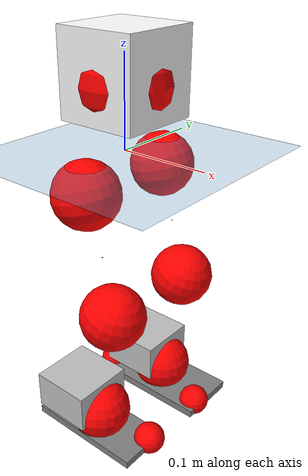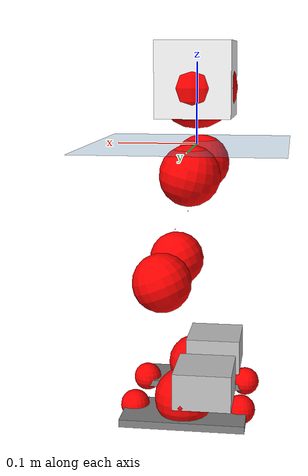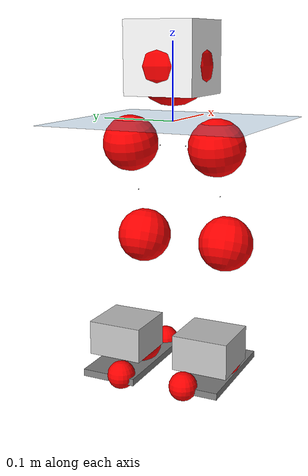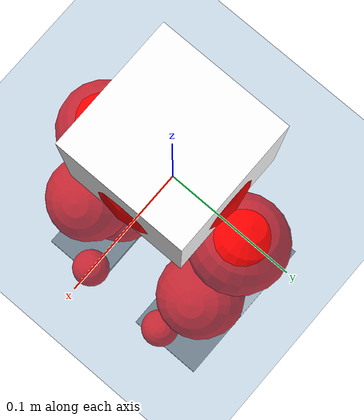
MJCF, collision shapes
<mujoco model="pi_12dof_release_v1">
  <compiler angle="radian" assetdir="assets" balanceinertia="true" inertiafromgeom="false"/>

  <option timestep="0.005" density="1.2" viscosity="2e-05"/>

  <size nkey="1"/>

  <visual>
    <quality shadowsize="8192"/>
    <map shadowclip="0.5"/>
  </visual>

  <default>
    <default class="/">
      <joint armature="0.01" damping="0.01" frictionloss="0.01"/>
      <geom contype="0" conaffinity="0" group="1" solref="-1000 -80"/>
      <site size="0.01 0.005 0.005" group="5"/>
      <general forcelimited="true" biastype="affine" gainprm="20" biasprm="0 -20 -0.5"/>
      <default class="foot">
        <geom size="0.0845 0.036 0.005" type="box" condim="6" group="4" priority="1" friction="0.9 0.2 0.2" solimp="0.015 1 0.005"/>
      </default>
      <default class="reward_collision_sphere">
        <geom group="5" rgba="1 0 0 1"/>
      </default>
    </default>
  </default>

  <asset>
    <texture type="skybox" colorspace="auto" name="//unnamed_texture_0" builtin="gradient" rgb1="0.95 0.95 0.95" rgb2="0.95 0.95 0.95" width="100" height="600"/>
    <texture type="2d" colorspace="auto" name="texplane" builtin="checker" rgb1="0.345 0.575 0.748" rgb2="0.345 0.575 0.748" markrgb="1 1 1" width="512" height="512"/>
    <material name="MatPlane" class="/" texture="texplane" texuniform="true" texrepeat="2 2" specular="0.9"/>
    <mesh name="baselink_1" class="/" file="baselink_1.STL"/>
    <mesh name="r_hip_pitch_link" class="/" file="r_hip_pitch_link.STL"/>
    <mesh name="r_hip_roll_link" class="/" file="r_hip_roll_link.STL"/>
    <mesh name="r_thigh_link" class="/" file="r_thigh_link.STL"/>
    <mesh name="r_calf_link" class="/" file="r_calf_link.STL"/>
    <mesh name="r_ankle_pitch_link" class="/" file="r_ankle_pitch_link.STL"/>
    <mesh name="r_ankle_roll_link" class="/" file="r_ankle_roll_link.STL"/>
    <mesh name="l_hip_pitch_link" class="/" file="l_hip_pitch_link.STL"/>
    <mesh name="l_hip_roll_link" class="/" file="l_hip_roll_link.STL"/>
    <mesh name="l_thigh_link" class="/" file="l_thigh_link.STL"/>
    <mesh name="l_calf_link" class="/" file="l_calf_link.STL"/>
    <mesh name="l_ankle_pitch_link" class="/" file="l_ankle_pitch_link.STL"/>
    <mesh name="l_ankle_roll_link" class="/" file="l_ankle_roll_link.STL"/>
  </asset>

  <worldbody>
    <geom name="floor" class="/" size="100 100 0.125" type="plane" group="0" material="MatPlane"/>
    <light name="toplight_shadow" class="/" pos="0 0 5" dir="0.0990148 0.0990148 -0.990148" type="directional" ambient="0.04 0.04 0.04" diffuse="0.55 0.55 0.55" specular="0.12 0.12 0.12"/>
    <light name="toplight_fill" class="/" pos="0 0 5" dir="0.0990148 0.0990148 -0.990148" type="directional" castshadow="false" ambient="0.04 0.04 0.04" diffuse="0.3 0.3 0.3" specular="0.08 0.08 0.08"/>
    <body name="trunk" pos="0.000619735 0.000415196 0.000901463" quat="1 -0.000277075 0.000150409 0.000284875">
      <inertial pos="0.00323957 -0.00140022 0.0396549" quat="0.695045 0.00948911 0.00882349 0.718849" mass="1.6883" diaginertia="0.0101133 0.00253374 0.00392527"/>
      <joint name="//unnamed_joint_0" type="free"/>
      <geom name="//unnamed_geom_1" class="/" type="mesh" density="0" rgba="1 1 1 1" mesh="baselink_1"/>
      <geom name="//unnamed_geom_2" class="/" size="0.0460602 0.0460602 0.0460602" pos="0 0 0.0787514" type="box" rgba="1 1 1 1"/>
      <geom name="//unnamed_geom_3" class="reward_collision_sphere" size="0.0506662" pos="0 0 0.0689075"/>
      <site name="imu" class="/" pos="-0.0046544 -0.00660674 0.00194335" size="0.00921204"/>
      <camera name="track" class="/" pos="0 -1.55206 0" quat="0.707107 0.707107 0 0" mode="trackcom"/>
      <camera name="ego_camera" class="/" pos="0.0752394 0 0.177191" quat="-0.5 -0.5 0.5 0.5"/>
      <body name="r_hip_pitch_link" pos="-4.72068e-05 -0.017534 -0.0320306" quat="0.992166 -0.00041456 -0.124929 -0.000152382">
        <inertial pos="0.00200193 -0.0434071 -0.000198443" quat="-0.0178687 0.704734 -0.0265818 0.708749" mass="0.291899" diaginertia="0.000111315 2.78139e-05 7.65501e-05"/>
        <joint name="r_hip_pitch_joint" class="/" pos="0 0 0" axis="0.0019025 -0.999997 -0.00140343" range="-1.75137 1.25086" armature="0.00963168" damping="0.0162301" frictionloss="0.00925898"/>
        <geom name="//unnamed_geom_4" class="/" type="mesh" density="0" rgba="0.75294 0.75294 0.75294 1" mesh="r_hip_pitch_link"/>
        <geom name="//unnamed_geom_5" class="/" size="0.000460602 0.000460602 0.000460602" type="box" rgba="0.75294 0.75294 0.75294 1"/>
        <body name="r_hip_roll_link" pos="0.000383122 -0.0429987 0.000198345" quat="1 -4.32551e-05 1.72308e-05 4.55627e-05">
          <inertial pos="-0.00138526 -0.000913766 -0.0619576" quat="0.7058 -0.0792965 -0.0826474 0.699091" mass="0.300612" diaginertia="0.000340376 7.88814e-05 0.000119003"/>
          <joint name="r_hip_roll_joint" class="/" pos="0 0 0" axis="-0.999996 -0.00011711 -0.00265908" range="-0.115703 0.50713" armature="0.00906045" damping="0.00600897" frictionloss="0.00929658"/>
          <geom name="//unnamed_geom_6" class="/" type="mesh" density="0" rgba="0.75294 0.75294 0.75294 1" mesh="r_hip_roll_link"/>
          <geom name="//unnamed_geom_7" class="/" size="0.000460602 0.000460602 0.000460602" type="box" rgba="0.75294 0.75294 0.75294 1"/>
          <geom name="//unnamed_geom_8" class="reward_collision_sphere" size="0.0368482"/>
          <body name="r_thigh_link" pos="0.00122497 0.00184667 -0.0683841" quat="1 1.53899e-05 -8.74182e-05 -1.49157e-05">
            <inertial pos="0.000125105 0.0017363 -0.0476843" quat="0.736988 0.675906 -0.000409745 -0.000255164" mass="0.0887696" diaginertia="0.000125898 2.65203e-05 5.34907e-05"/>
            <joint name="r_thigh_joint" class="/" pos="0 0 0" axis="-0.0012136 0.00185239 -0.999998" range="-0.300823 0.585936" armature="0.00945595" damping="0.00373325" frictionloss="0.00859101"/>
            <geom name="//unnamed_geom_9" class="/" type="mesh" density="0" rgba="0.75294 0.75294 0.75294 1" mesh="r_thigh_link"/>
            <geom name="//unnamed_geom_10" class="/" size="0.000460602 0.000460602 0.000460602" type="box" rgba="0.75294 0.75294 0.75294 1"/>
            <body name="r_calf_link" pos="-0.0014001 -0.00261886 -0.0683912" quat="0.94765 -9.93098e-06 0.319312 2.57486e-05">
              <inertial pos="-0.000205226 0.000214216 -0.068599" quat="0.999982 -0.0036921 -0.00282395 0.00384267" mass="0.643796" diaginertia="0.0036555 0.00098677 0.000164017"/>
              <joint name="r_calf_joint" class="/" pos="0 0 0" axis="0.000793953 -1 0.000208359" range="-1.64029 0.647098" armature="0.00938235" damping="0.00981489" frictionloss="0.00924228"/>
              <geom name="//unnamed_geom_11" class="/" type="mesh" density="0" rgba="0.75294 0.75294 0.75294 1" mesh="r_calf_link"/>
              <geom name="//unnamed_geom_12" class="/" size="0.000460602 0.000460602 0.000460602" type="box" rgba="0.75294 0.75294 0.75294 1"/>
              <geom name="//unnamed_geom_13" class="reward_collision_sphere" size="0.0368482"/>
              <body name="r_ankle_pitch_link" pos="1.06695e-05 -9.55434e-05 -0.137513" quat="0.980054 2.82765e-05 -0.198733 9.53765e-06">
                <inertial pos="0.00461382 0.0028599 -0.00116972" quat="-0.00243435 0.706897 -0.00750638 0.707273" mass="0.138699" diaginertia="0.000319203 6.29699e-05 0.000111722"/>
                <joint name="r_ankle_pitch_joint" class="/" pos="0 0 0" axis="0.00204966 -0.999994 -0.00267146" range="-1.30108 0.523852" armature="0.00920601" damping="0.00778955" frictionloss="0.00930521"/>
                <geom name="//unnamed_geom_14" class="/" type="mesh" density="0" rgba="0.75294 0.75294 0.75294 1" mesh="r_ankle_pitch_link"/>
                <geom name="//unnamed_geom_15" class="/" size="0.035927 0.0368482 0.0230301" type="box" rgba="0.75294 0.75294 0.75294 1"/>
                <body name="r_ankle_roll_link" pos="0.0768062 0.00278375 0.00032149" quat="1 -3.11995e-05 4.755e-05 8.13267e-05">
                  <inertial pos="-0.023866 -0.000266887 -0.0129745" quat="0.561599 0.430257 0.436776 0.555619" mass="0.399977" diaginertia="0.00112016 0.000289537 0.000255629"/>
                  <joint name="r_ankle_roll_joint" class="/" pos="0 0 0" axis="-0.999993 -0.00372923 0.000487179" stiffness="0.000173718" range="-0.16824 0.147527" armature="0.0088435" damping="0.00503499" frictionloss="0.00964108"/>
                  <geom name="//unnamed_geom_16" class="/" type="mesh" density="0" rgba="0.75294 0.75294 0.75294 1" mesh="r_ankle_roll_link"/>
                  <geom name="//unnamed_geom_17" class="/" type="mesh" rgba="0.75294 0.75294 0.75294 1" mesh="r_ankle_roll_link"/>
                  <geom name="right_foot" class="foot" size="0.0718301 0.0313497 0.00441746" pos="-0.0511628 0 -0.0433133"/>
                  <geom name="//unnamed_geom_19" class="reward_collision_sphere" size="0.0368482" pos="-0.0501596 0 -0.0196878"/>
                  <geom name="//unnamed_geom_20" class="reward_collision_sphere" size="0.0184241" pos="0.0150479 0.0155206 -0.0393757"/>
                  <geom name="//unnamed_geom_21" class="reward_collision_sphere" size="0.0184241" pos="-0.120383 0.0155206 -0.0393757"/>
                  <site name="right_foot" class="foot" pos="-0.0511628 0 -0.0433133" size="0.00921204"/>
                </body>
              </body>
            </body>
          </body>
        </body>
      </body>
      <body name="l_hip_pitch_link" pos="0.000111255 0.0187058 -0.0327697" quat="0.992196 -1.15649e-05 -0.124689 -8.8489e-05">
        <inertial pos="0.000789981 0.041547 -0.000568094" quat="-0.0389241 0.704707 0.0308239 0.707759" mass="0.30557" diaginertia="0.000130245 2.97628e-05 9.26366e-05"/>
        <joint name="l_hip_pitch_joint" class="/" pos="0 0 0" axis="0.00109307 0.999988 -0.00482632" range="-1.25649 1.74936" armature="0.00900593" damping="0.0135623" frictionloss="0.00900227"/>
        <geom name="//unnamed_geom_22" class="/" type="mesh" density="0" rgba="0.75294 0.75294 0.75294 1" mesh="l_hip_pitch_link"/>
        <geom name="//unnamed_geom_23" class="/" size="0.000460602 0.000460602 0.000460602" type="box" rgba="0.75294 0.75294 0.75294 1"/>
        <body name="l_hip_roll_link" pos="0.000724805 0.0431672 0.000417675" quat="1 -6.89177e-05 -4.09303e-05 3.26031e-05">
          <inertial pos="-0.00128017 0.000440274 -0.0616913" quat="0.698201 -0.0741159 -0.0777226 0.707801" mass="0.299286" diaginertia="0.000332587 7.73114e-05 0.000117028"/>
          <joint name="l_hip_roll_joint" class="/" pos="0 0 0" axis="-1 0.000368904 0.000673172" range="-0.517057 0.109998" armature="0.00952528" damping="0" frictionloss="0.00921167"/>
          <geom name="//unnamed_geom_24" class="/" type="mesh" density="0" rgba="0.75294 0.75294 0.75294 1" mesh="l_hip_roll_link"/>
          <geom name="//unnamed_geom_25" class="/" size="0.000460602 0.000460602 0.000460602" type="box" rgba="0.75294 0.75294 0.75294 1"/>
          <geom name="//unnamed_geom_26" class="reward_collision_sphere" size="0.0368482"/>
          <body name="l_thigh_link" pos="0.000871594 -0.00138125 -0.0678607" quat="1 -3.86723e-05 -0.000127865 -0.000102197">
            <inertial pos="-0.000450294 -0.000598959 -0.0477365" quat="0.675793 0.737091 -0.000863008 0.000221684" mass="0.0886332" diaginertia="0.000127211 2.64425e-05 5.37352e-05"/>
            <joint name="l_thigh_joint" class="/" pos="0 0 0" axis="0.000190859 -0.000567287 -1" range="-0.597583 0.315606" armature="0.0091487" damping="0.00364128" frictionloss="0.0090743"/>
            <geom name="//unnamed_geom_27" class="/" type="mesh" density="0" rgba="0.75294 0.75294 0.75294 1" mesh="l_thigh_link"/>
            <geom name="//unnamed_geom_28" class="/" size="0.000460602 0.000460602 0.000460602" type="box" rgba="0.75294 0.75294 0.75294 1"/>
            <body name="l_calf_link" pos="-0.00035465 6.12983e-06 -0.0697713" quat="0.947658 -5.38304e-05 0.319288 -4.93443e-05">
              <inertial pos="0.000443639 0.00242422 -0.0687538" quat="0.999983 0.00309594 4.2524e-05 0.00489355" mass="0.621505" diaginertia="0.00350619 0.000965238 0.000159151"/>
              <joint name="l_calf_joint" class="/" pos="0 0 0" axis="-0.000396366 1 -0.000468598" range="-0.626166 1.66299" armature="0.00922179" damping="0.00736622" frictionloss="0.00909427"/>
              <geom name="//unnamed_geom_29" class="/" type="mesh" density="0" rgba="0.75294 0.75294 0.75294 1" mesh="l_calf_link"/>
              <geom name="//unnamed_geom_30" class="/" size="0.000460602 0.000460602 0.000460602" type="box" rgba="0.75294 0.75294 0.75294 1"/>
              <geom name="//unnamed_geom_31" class="reward_collision_sphere" size="0.0368482"/>
              <body name="l_ankle_pitch_link" pos="6.78042e-05 0.000917654 -0.137523" quat="0.980062 -2.37544e-05 -0.19869 -3.68675e-05">
                <inertial pos="0.0057965 -0.00147227 3.20338e-07" quat="-0.00244938 0.707064 0.00199893 0.707143" mass="0.137893" diaginertia="0.00030982 6.24593e-05 0.000110643"/>
                <joint name="l_ankle_pitch_joint" class="/" pos="0 0 0" axis="1.41971e-05 1 -0.000754741" range="-0.517697 1.29369" armature="0.00931657" damping="0.00238873" frictionloss="0.00940477"/>
                <geom name="//unnamed_geom_32" class="/" type="mesh" density="0" rgba="0.75294 0.75294 0.75294 1" mesh="l_ankle_pitch_link"/>
                <geom name="//unnamed_geom_33" class="/" size="0.035927 0.0368482 0.0230301" type="box" rgba="0.75294 0.75294 0.75294 1"/>
                <body name="l_ankle_roll_link" pos="0.0760322 0.000518938 -0.000628883" quat="1 0.000114149 0.000103608 5.3749e-05">
                  <inertial pos="-0.0244913 -0.000390452 -0.0143082" quat="0.560192 0.430716 0.43222 0.560227" mass="0.411682" diaginertia="0.00115427 0.000293291 0.000263479"/>
                  <joint name="l_ankle_roll_joint" class="/" pos="0 0 0" axis="-1 0.000103309 -0.000739742" range="-0.154079 0.152085" armature="0.00897058" damping="0.00951829" frictionloss="0.00919285"/>
                  <geom name="//unnamed_geom_34" class="/" type="mesh" density="0" rgba="0.75294 0.75294 0.75294 1" mesh="l_ankle_roll_link"/>
                  <geom name="//unnamed_geom_35" class="/" type="mesh" rgba="0.75294 0.75294 0.75294 1" mesh="l_ankle_roll_link"/>
                  <geom name="left_foot" class="foot" size="0.077259 0.0371936 0.00473806" pos="-0.0511628 0 -0.0433133"/>
                  <geom name="//unnamed_geom_37" class="reward_collision_sphere" size="0.0368482" pos="-0.0501596 0 -0.0196878"/>
                  <geom name="//unnamed_geom_38" class="reward_collision_sphere" size="0.0184241" pos="0.0150479 -0.0155206 -0.0393757"/>
                  <geom name="//unnamed_geom_39" class="reward_collision_sphere" size="0.0184241" pos="-0.120383 -0.0155206 -0.0393757"/>
                  <site name="left_foot" class="foot" pos="-0.0511628 0 -0.0433133" size="0.00921204"/>
                </body>
              </body>
            </body>
          </body>
        </body>
      </body>
    </body>
  </worldbody>

  <contact>
    <pair class="/" geom1="floor" geom2="right_foot" name="//unnamed_contact_1"/>
    <pair class="/" geom1="floor" geom2="left_foot" name="//unnamed_contact_0"/>
  </contact>

  <actuator>
    <general name="r_hip_pitch_joint" class="/" joint="r_hip_pitch_joint" forcerange="-19.3392 19.3392" gainprm="18.4233" biasprm="0 -18.4233 -0.46211"/>
    <general name="r_hip_roll_joint" class="/" joint="r_hip_roll_joint" forcerange="-19.1374 19.1374" gainprm="18.4233" biasprm="0 -18.4233 -0.46211"/>
    <general name="r_thigh_joint" class="/" joint="r_thigh_joint" forcerange="-18.6966 18.6966" gainprm="18.4233" biasprm="0 -18.4233 -0.46211"/>
    <general name="r_calf_joint" class="/" joint="r_calf_joint" forcerange="-19.4783 19.4783" gainprm="18.4233" biasprm="0 -18.4233 -0.46211"/>
    <general name="r_ankle_pitch_joint" class="/" joint="r_ankle_pitch_joint" forcerange="-19.0351 19.0351" gainprm="18.4233" biasprm="0 -18.4233 -0.46211"/>
    <general name="r_ankle_roll_joint" class="/" joint="r_ankle_roll_joint" forcerange="-18.6578 18.6578" gainprm="18.4233" biasprm="0 -18.4233 -0.46211"/>
    <general name="l_hip_pitch_joint" class="/" joint="l_hip_pitch_joint" forcerange="-19.7473 19.7473" gainprm="18.4233" biasprm="0 -18.4233 -0.46211"/>
    <general name="l_hip_roll_joint" class="/" joint="l_hip_roll_joint" forcerange="-19.4076 19.4076" gainprm="18.4233" biasprm="0 -18.4233 -0.46211"/>
    <general name="l_thigh_joint" class="/" joint="l_thigh_joint" forcerange="-18.9585 18.9585" gainprm="18.4233" biasprm="0 -18.4233 -0.46211"/>
    <general name="l_calf_joint" class="/" joint="l_calf_joint" forcerange="-19.3597 19.3597" gainprm="18.4233" biasprm="0 -18.4233 -0.46211"/>
    <general name="l_ankle_pitch_joint" class="/" joint="l_ankle_pitch_joint" forcerange="-18.6819 18.6819" gainprm="18.4233" biasprm="0 -18.4233 -0.46211"/>
    <general name="l_ankle_roll_joint" class="/" joint="l_ankle_roll_joint" forcerange="-20.3767 20.3767" gainprm="18.4233" biasprm="0 -18.4233 -0.46211"/>
  </actuator>

  <sensor>
    <gyro site="imu" name="imu_angular_velocity"/>
    <velocimeter site="imu" name="imu_linear_velocity"/>
    <framelinvel objtype="site" objname="left_foot" name="left_foot_global_linear_velocity"/>
    <framelinvel objtype="site" objname="right_foot" name="right_foot_global_linear_velocity"/>
  </sensor>

  <keyframe>
    <key name="home" qpos="0 0 0.291 1 0 0 0 0.4 0 0 -0.8 0.4 0 -0.4 0 0 0.8 -0.4 0"/>
  </keyframe>
</mujoco>
